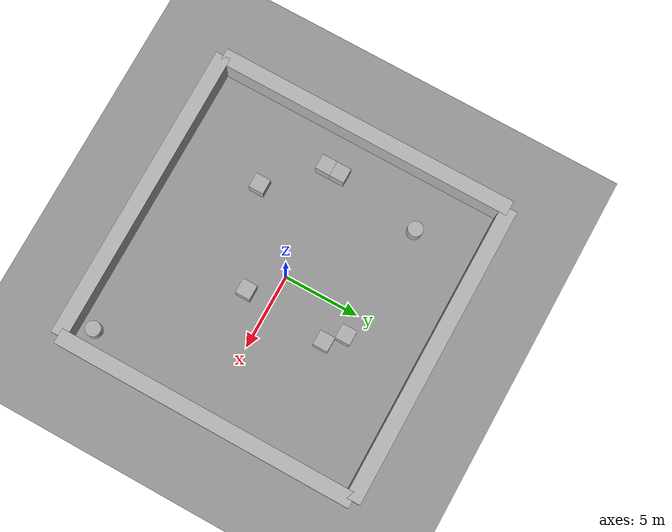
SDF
<?xml version="1.0" ?>
<sdf version='1.8'>
  <world name='enclosed_world'>
    <plugin
      filename="gz-sim-physics-system"
      name="gz::sim::systems::Physics">
    </plugin>
    <plugin
      filename="gz-sim-user-commands-system"
      name="gz::sim::systems::UserCommands">
    </plugin>
    <plugin
      filename="gz-sim-scene-broadcaster-system"
      name="gz::sim::systems::SceneBroadcaster">
    </plugin>
    <plugin
      filename="gz-sim-sensors-system"
      name="gz::sim::systems::Sensors">
      <render_engine>ogre2</render_engine>
    </plugin>
    <plugin
      filename="gz-sim-contact-system"
      name="gz::sim::systems::Contact">
    </plugin>
    <gravity>0 0 -9.81</gravity>
    <magnetic_field>6e-06 2.3e-05 -4.2e-05</magnetic_field>
    <atmosphere type='adiabatic'/>
    <physics type='ode'>
      <max_step_size>0.001</max_step_size>
      <real_time_factor>1</real_time_factor>
      <real_time_update_rate>1000</real_time_update_rate>
    </physics>
    <scene>
      <ambient>0.4 0.4 0.4 1</ambient>
      <background>0.7 0.7 0.7 1</background>
      <shadows>true</shadows>
    </scene>
    <model name='ground_plane'>
      <static>true</static>
      <link name='link'>
        <collision name='col'>
          <geometry>
            <plane>
              <normal>0 0 1</normal>
              <size>100 100</size>
            </plane>
          </geometry>
          <surface>
            <friction>
              <ode>
                <mu>1</mu>
                <mu2>1</mu2>
              </ode>
            </friction>
            <bounce/>
            <contact/>
          </surface>
        </collision>
        <visual name='vis'>
          <geometry>
            <plane>
              <normal>0 0 1</normal>
              <size>100 100</size>
            </plane>
          </geometry>
          <material>
            <ambient>0.6 0.6 0.6 1</ambient>
            <diffuse>0.6 0.6 0.6 1</diffuse>
          </material>
        </visual>
        <pose>0 0 0 0 -0 0</pose>
        <inertial>
          <pose>0 0 0 0 -0 0</pose>
          <mass>1</mass>
          <inertia>
            <ixx>1</ixx>
            <ixy>0</ixy>
            <ixz>0</ixz>
            <iyy>1</iyy>
            <iyz>0</iyz>
            <izz>1</izz>
          </inertia>
        </inertial>
        <enable_wind>false</enable_wind>
      </link>
      <pose>0 0 0 0 -0 0</pose>
      <self_collide>false</self_collide>
    </model>
    <model name='wall_north'>
      <static>true</static>
      <pose>0 10 1 0 -0 0</pose>
      <link name='l'>
        <collision name='c'>
          <geometry>
            <box>
              <size>20 1 2</size>
            </box>
          </geometry>
          <surface>
            <friction>
              <ode/>
            </friction>
            <bounce/>
            <contact/>
          </surface>
        </collision>
        <visual name='v'>
          <geometry>
            <box>
              <size>20 1 2</size>
            </box>
          </geometry>
        </visual>
        <pose>0 0 0 0 -0 0</pose>
        <inertial>
          <pose>0 0 0 0 -0 0</pose>
          <mass>1</mass>
          <inertia>
            <ixx>1</ixx>
            <ixy>0</ixy>
            <ixz>0</ixz>
            <iyy>1</iyy>
            <iyz>0</iyz>
            <izz>1</izz>
          </inertia>
        </inertial>
        <enable_wind>false</enable_wind>
      </link>
      <self_collide>false</self_collide>
    </model>
    <model name='wall_south'>
      <static>true</static>
      <pose>0 -10 1 0 -0 0</pose>
      <link name='l'>
        <collision name='c'>
          <geometry>
            <box>
              <size>20 1 2</size>
            </box>
          </geometry>
          <surface>
            <friction>
              <ode/>
            </friction>
            <bounce/>
            <contact/>
          </surface>
        </collision>
        <visual name='v'>
          <geometry>
            <box>
              <size>20 1 2</size>
            </box>
          </geometry>
        </visual>
        <pose>0 0 0 0 -0 0</pose>
        <inertial>
          <pose>0 0 0 0 -0 0</pose>
          <mass>1</mass>
          <inertia>
            <ixx>1</ixx>
            <ixy>0</ixy>
            <ixz>0</ixz>
            <iyy>1</iyy>
            <iyz>0</iyz>
            <izz>1</izz>
          </inertia>
        </inertial>
        <enable_wind>false</enable_wind>
      </link>
      <self_collide>false</self_collide>
    </model>
    <model name='wall_east'>
      <static>true</static>
      <pose>10 0 1 0 -0 0</pose>
      <link name='l'>
        <collision name='c'>
          <geometry>
            <box>
              <size>1 20 2</size>
            </box>
          </geometry>
          <surface>
            <friction>
              <ode/>
            </friction>
            <bounce/>
            <contact/>
          </surface>
        </collision>
        <visual name='v'>
          <geometry>
            <box>
              <size>1 20 2</size>
            </box>
          </geometry>
        </visual>
        <pose>0 0 0 0 -0 0</pose>
        <inertial>
          <pose>0 0 0 0 -0 0</pose>
          <mass>1</mass>
          <inertia>
            <ixx>1</ixx>
            <ixy>0</ixy>
            <ixz>0</ixz>
            <iyy>1</iyy>
            <iyz>0</iyz>
            <izz>1</izz>
          </inertia>
        </inertial>
        <enable_wind>false</enable_wind>
      </link>
      <self_collide>false</self_collide>
    </model>
    <model name='wall_west'>
      <static>true</static>
      <pose>-10 0 1 0 -0 0</pose>
      <link name='l'>
        <collision name='c'>
          <geometry>
            <box>
              <size>1 20 2</size>
            </box>
          </geometry>
          <surface>
            <friction>
              <ode/>
            </friction>
            <bounce/>
            <contact/>
          </surface>
        </collision>
        <visual name='v'>
          <geometry>
            <box>
              <size>1 20 2</size>
            </box>
          </geometry>
        </visual>
        <pose>0 0 0 0 -0 0</pose>
        <inertial>
          <pose>0 0 0 0 -0 0</pose>
          <mass>1</mass>
          <inertia>
            <ixx>1</ixx>
            <ixy>0</ixy>
            <ixz>0</ixz>
            <iyy>1</iyy>
            <iyz>0</iyz>
            <izz>1</izz>
          </inertia>
        </inertial>
        <enable_wind>false</enable_wind>
      </link>
      <self_collide>false</self_collide>
    </model>

    <model name='box'>
      <pose>1.4526 4.97376 0.5 0 -0 0</pose>
      <link name='box_link'>
        <inertial>
          <inertia>
            <ixx>0.16666</ixx>
            <ixy>0</ixy>
            <ixz>0</ixz>
            <iyy>0.16666</iyy>
            <iyz>0</iyz>
            <izz>0.16666</izz>
          </inertia>
          <mass>1</mass>
          <pose>0 0 0 0 -0 0</pose>
        </inertial>
        <collision name='box_collision'>
          <geometry>
            <box>
              <size>1 1 1</size>
            </box>
          </geometry>
          <surface>
            <friction>
              <ode/>
            </friction>
            <bounce/>
            <contact/>
          </surface>
        </collision>
        <visual name='box_visual'>
          <geometry>
            <box>
              <size>1 1 1</size>
            </box>
          </geometry>
          <material>
            <ambient>0.3 0.3 0.3 1</ambient>
            <diffuse>0.7 0.7 0.7 1</diffuse>
            <specular>1 1 1 1</specular>
          </material>
        </visual>
        <pose>0 0 0 0 -0 0</pose>
        <enable_wind>false</enable_wind>
      </link>
      <static>false</static>
      <self_collide>false</self_collide>
    </model>
    <model name='box_0'>
      <pose>-4.19096 -4.18339 0.5 0 -0 0</pose>
      <link name='box_link'>
        <inertial>
          <inertia>
            <ixx>0.16666</ixx>
            <ixy>0</ixy>
            <ixz>0</ixz>
            <iyy>0.16666</iyy>
            <iyz>0</iyz>
            <izz>0.16666</izz>
          </inertia>
          <mass>1</mass>
          <pose>0 0 0 0 -0 0</pose>
        </inertial>
        <collision name='box_collision'>
          <geometry>
            <box>
              <size>1 1 1</size>
            </box>
          </geometry>
          <surface>
            <friction>
              <ode/>
            </friction>
            <bounce/>
            <contact/>
          </surface>
        </collision>
        <visual name='box_visual'>
          <geometry>
            <box>
              <size>1 1 1</size>
            </box>
          </geometry>
          <material>
            <ambient>0.3 0.3 0.3 1</ambient>
            <diffuse>0.7 0.7 0.7 1</diffuse>
            <specular>1 1 1 1</specular>
          </material>
        </visual>
        <pose>0 0 0 0 -0 0</pose>
        <enable_wind>false</enable_wind>
      </link>
      <static>false</static>
      <self_collide>false</self_collide>
    </model>
    <model name='cylinder'>
      <pose>8.59508 -8.58918 0.499999 0 -0 -0</pose>
      <link name='cylinder_link'>
        <inertial>
          <inertia>
            <ixx>0.14580000000000001</ixx>
            <ixy>0</ixy>
            <ixz>0</ixz>
            <iyy>0.14580000000000001</iyy>
            <iyz>0</iyz>
            <izz>0.125</izz>
          </inertia>
          <mass>1</mass>
          <pose>0 0 0 0 -0 0</pose>
        </inertial>
        <collision name='cylinder_collision'>
          <geometry>
            <cylinder>
              <radius>0.5</radius>
              <length>1</length>
            </cylinder>
          </geometry>
          <surface>
            <friction>
              <ode/>
            </friction>
            <bounce/>
            <contact/>
          </surface>
        </collision>
        <visual name='cylinder_visual'>
          <geometry>
            <cylinder>
              <radius>0.5</radius>
              <length>1</length>
            </cylinder>
          </geometry>
          <material>
            <ambient>0.3 0.3 0.3 1</ambient>
            <diffuse>0.7 0.7 0.7 1</diffuse>
            <specular>1 1 1 1</specular>
          </material>
        </visual>
        <pose>0 0 0 0 -0 0</pose>
        <enable_wind>false</enable_wind>
      </link>
      <static>false</static>
      <self_collide>false</self_collide>
    </model>
    <model name='box_1'>
      <pose>-7.22369 -1.16734 0.5 -0 -0 0</pose>
      <link name='box_link'>
        <inertial>
          <inertia>
            <ixx>0.16666</ixx>
            <ixy>0</ixy>
            <ixz>0</ixz>
            <iyy>0.16666</iyy>
            <iyz>0</iyz>
            <izz>0.16666</izz>
          </inertia>
          <mass>1</mass>
          <pose>0 0 0 0 -0 0</pose>
        </inertial>
        <collision name='box_collision'>
          <geometry>
            <box>
              <size>1 1 1</size>
            </box>
          </geometry>
          <surface>
            <friction>
              <ode/>
            </friction>
            <bounce/>
            <contact/>
          </surface>
        </collision>
        <visual name='box_visual'>
          <geometry>
            <box>
              <size>1 1 1</size>
            </box>
          </geometry>
          <material>
            <ambient>0.3 0.3 0.3 1</ambient>
            <diffuse>0.7 0.7 0.7 1</diffuse>
            <specular>1 1 1 1</specular>
          </material>
        </visual>
        <pose>0 0 0 0 -0 0</pose>
        <enable_wind>false</enable_wind>
      </link>
      <static>false</static>
      <self_collide>false</self_collide>
    </model>
    <model name='cylinder_0'>
      <pose>-6.33546 5.57658 0.499999 0 0 -0</pose>
      <link name='cylinder_link'>
        <inertial>
          <inertia>
            <ixx>0.14580000000000001</ixx>
            <ixy>0</ixy>
            <ixz>0</ixz>
            <iyy>0.14580000000000001</iyy>
            <iyz>0</iyz>
            <izz>0.125</izz>
          </inertia>
          <mass>1</mass>
          <pose>0 0 0 0 -0 0</pose>
        </inertial>
        <collision name='cylinder_collision'>
          <geometry>
            <cylinder>
              <radius>0.5</radius>
              <length>1</length>
            </cylinder>
          </geometry>
          <surface>
            <friction>
              <ode/>
            </friction>
            <bounce/>
            <contact/>
          </surface>
        </collision>
        <visual name='cylinder_visual'>
          <geometry>
            <cylinder>
              <radius>0.5</radius>
              <length>1</length>
            </cylinder>
          </geometry>
          <material>
            <ambient>0.3 0.3 0.3 1</ambient>
            <diffuse>0.7 0.7 0.7 1</diffuse>
            <specular>1 1 1 1</specular>
          </material>
        </visual>
        <pose>0 0 0 0 -0 0</pose>
        <enable_wind>false</enable_wind>
      </link>
      <static>false</static>
      <self_collide>false</self_collide>
    </model>
    <model name='box_2'>
      <pose>-7.2207 -0.167337 0.5 -0 -0 0</pose>
      <link name='box_link'>
        <inertial>
          <inertia>
            <ixx>0.16666</ixx>
            <ixy>0</ixy>
            <ixz>0</ixz>
            <iyy>0.16666</iyy>
            <iyz>0</iyz>
            <izz>0.16666</izz>
          </inertia>
          <mass>1</mass>
          <pose>0 0 0 0 -0 0</pose>
        </inertial>
        <collision name='box_collision'>
          <geometry>
            <box>
              <size>1 1 1</size>
            </box>
          </geometry>
          <surface>
            <friction>
              <ode/>
            </friction>
            <bounce/>
            <contact/>
          </surface>
        </collision>
        <visual name='box_visual'>
          <geometry>
            <box>
              <size>1 1 1</size>
            </box>
          </geometry>
          <material>
            <ambient>0.3 0.3 0.3 1</ambient>
            <diffuse>0.7 0.7 0.7 1</diffuse>
            <specular>1 1 1 1</specular>
          </material>
        </visual>
        <pose>0 0 0 0 -0 0</pose>
        <enable_wind>false</enable_wind>
      </link>
      <static>false</static>
      <self_collide>false</self_collide>
    </model>
    <model name='box_3'>
      <pose>1.96996 -1.66338 0.5 0 -0 0</pose>
      <link name='box_link'>
        <inertial>
          <inertia>
            <ixx>0.16666</ixx>
            <ixy>0</ixy>
            <ixz>0</ixz>
            <iyy>0.16666</iyy>
            <iyz>0</iyz>
            <izz>0.16666</izz>
          </inertia>
          <mass>1</mass>
          <pose>0 0 0 0 -0 0</pose>
        </inertial>
        <collision name='box_collision'>
          <geometry>
            <box>
              <size>1 1 1</size>
            </box>
          </geometry>
          <surface>
            <friction>
              <ode/>
            </friction>
            <bounce/>
            <contact/>
          </surface>
        </collision>
        <visual name='box_visual'>
          <geometry>
            <box>
              <size>1 1 1</size>
            </box>
          </geometry>
          <material>
            <ambient>0.3 0.3 0.3 1</ambient>
            <diffuse>0.7 0.7 0.7 1</diffuse>
            <specular>1 1 1 1</specular>
          </material>
        </visual>
        <pose>0 0 0 0 -0 0</pose>
        <enable_wind>false</enable_wind>
      </link>
      <static>false</static>
      <self_collide>false</self_collide>
    </model>
    <model name='box_4'>
      <pose>2.45269 3.99691 0.5 0 -0 0</pose>
      <link name='box_link'>
        <inertial>
          <inertia>
            <ixx>0.16666</ixx>
            <ixy>0</ixy>
            <ixz>0</ixz>
            <iyy>0.16666</iyy>
            <iyz>0</iyz>
            <izz>0.16666</izz>
          </inertia>
          <mass>1</mass>
          <pose>0 0 0 0 -0 0</pose>
        </inertial>
        <collision name='box_collision'>
          <geometry>
            <box>
              <size>1 1 1</size>
            </box>
          </geometry>
          <surface>
            <friction>
              <ode/>
            </friction>
            <bounce/>
            <contact/>
          </surface>
        </collision>
        <visual name='box_visual'>
          <geometry>
            <box>
              <size>1 1 1</size>
            </box>
          </geometry>
          <material>
            <ambient>0.3 0.3 0.3 1</ambient>
            <diffuse>0.7 0.7 0.7 1</diffuse>
            <specular>1 1 1 1</specular>
          </material>
        </visual>
        <pose>0 0 0 0 -0 0</pose>
        <enable_wind>false</enable_wind>
      </link>
      <static>false</static>
      <self_collide>false</self_collide>
    </model>
    <light name='sun' type='directional'>
      <pose>0 0 10 0 -0 0</pose>
      <cast_shadows>true</cast_shadows>
      <intensity>1</intensity>
      <direction>-0.5 0.2 -1</direction>
      <diffuse>1 1 1 1</diffuse>
      <specular>0.1 0.1 0.1 1</specular>
      <attenuation>
        <range>10</range>
        <linear>1</linear>
        <constant>1</constant>
        <quadratic>0</quadratic>
      </attenuation>
      <spot>
        <inner_angle>0</inner_angle>
        <outer_angle>0</outer_angle>
        <falloff>0</falloff>
      </spot>
    </light>

    <plugin
      filename="gz-sim-physics-system"
      name="gz::sim::systems::Physics">
    </plugin>
    <plugin
      filename="gz-sim-user-commands-system"
      name="gz::sim::systems::UserCommands">
    </plugin>
    <plugin
      filename="gz-sim-scene-broadcaster-system"
      name="gz::sim::systems::SceneBroadcaster">
    </plugin>
    <plugin
      filename="gz-sim-sensors-system"
      name="gz::sim::systems::Sensors">
      <render_engine>ogre2</render_engine>
    </plugin>
    <plugin
      filename="gz-sim-contact-system"
      name="gz::sim::systems::Contact">
    </plugin>

  </world>
</sdf>
